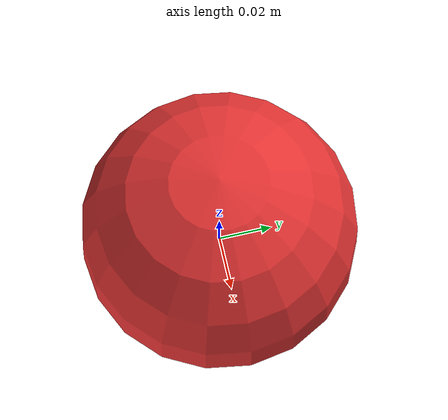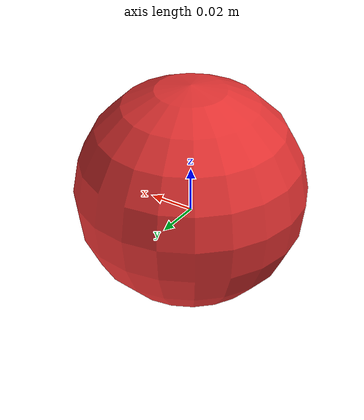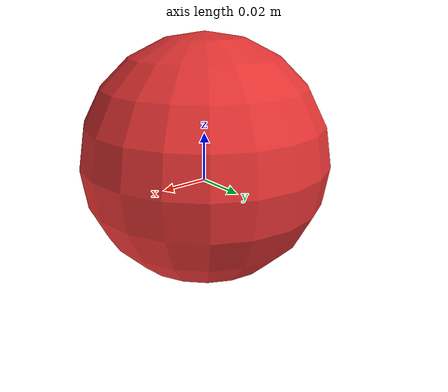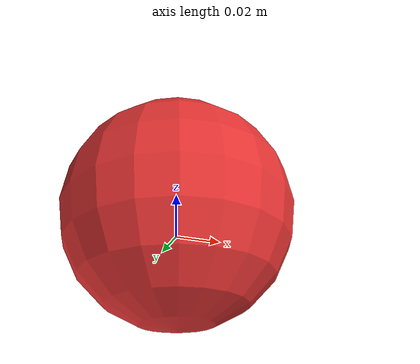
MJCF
<mujoco model="target_model">
  <worldbody>
    <body name="target" pos="0 0 .01">
      <joint armature="0" axis="1 0 0" damping="0" limited="true" name="target_x" pos="0 0 0" range="-.27 .27" stiffness="0" type="slide"/>
      <joint armature="0" axis="0 1 0" damping="0" limited="true" name="target_y" pos="0 0 0" range="-.27 .27" stiffness="0" type="slide"/>
      <geom contype="0" name="target_geo" pos="0 0 0.0" rgba="0.9 0.2 0.2 1" size=".05" type="sphere"/>
    </body>
  </worldbody>
</mujoco>
